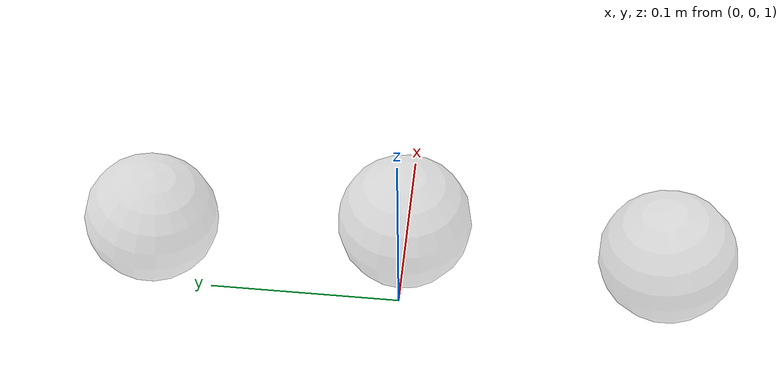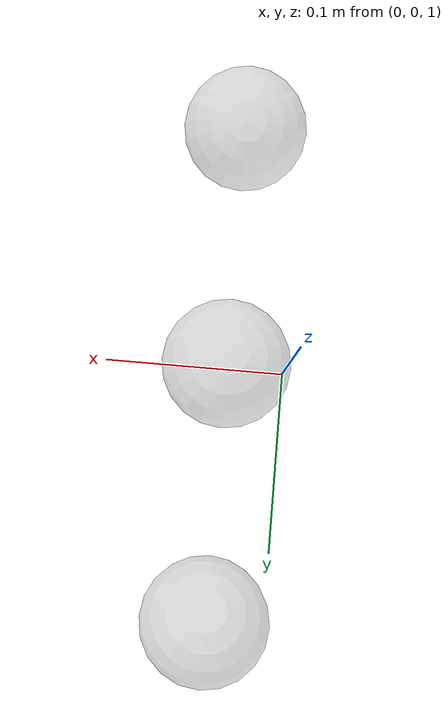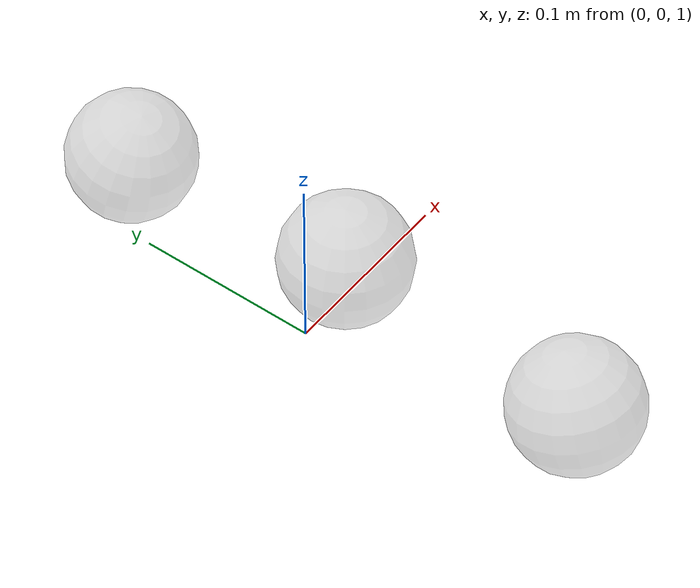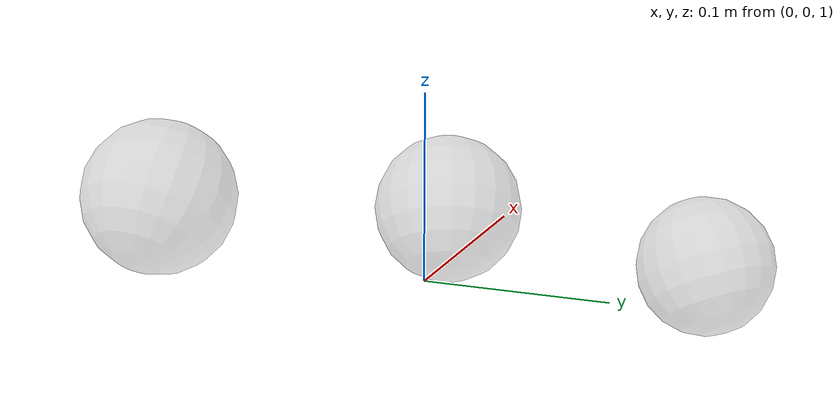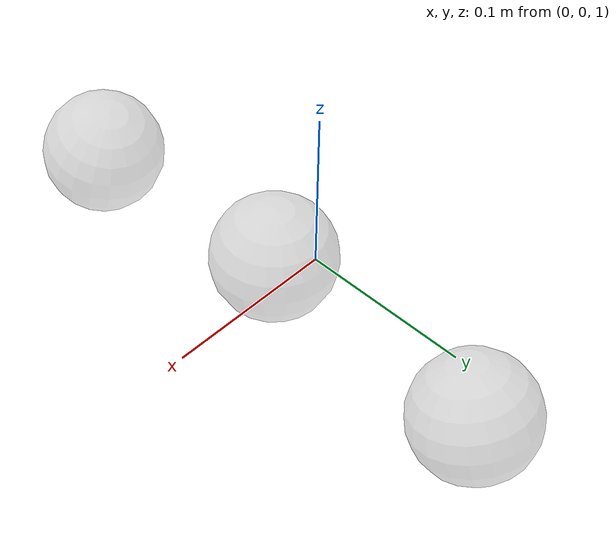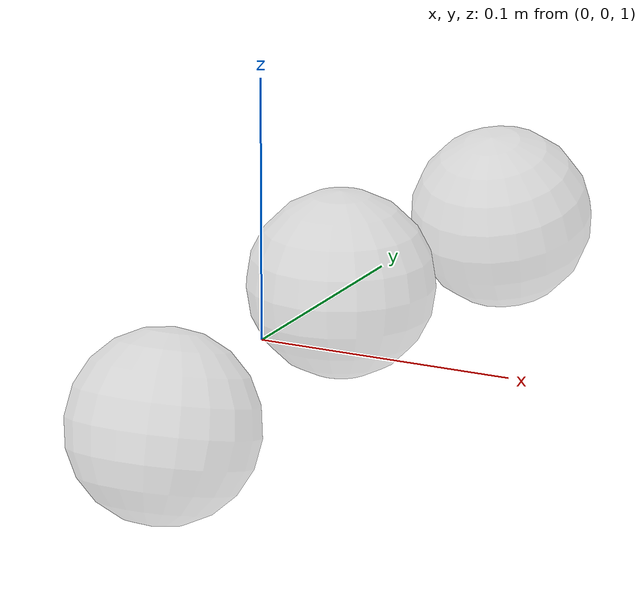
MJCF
<?xml version='1.0' encoding='utf-8'?>
<mujoco model="R1">
  <compiler angle="radian" />

  <statistic meansize="0.144785" extent="1.23314" center="0.025392 2.0634e-05 -0.245975" />
  <default>
    <joint damping="0.001" armature="0.01" frictionloss="0.1" />
  </default>
  <option timestep="0.002" />
  <worldbody>
    <body name="pelvis_link" pos="0.0 0.0 0.78">
      <inertial pos="0.0269881 0.000184581 -0.0704106" quat="0.703476 0.707138 -0.0498219 0.0509351" mass="2.25001" diaginertia="0.00646721 0.00620017 0.00381749" />
      <joint name="floating_base_joint" type="free" />
      <body name="hips_sphere" pos="0.0325 0.0 -0.0902351">
        <geom type="sphere" size="0.035" contype="0" conaffinity="0" group="1" density="0" rgba="0.6 0.6 0.6 0.0" />
      </body>
      <body name="left_hip_pitch_link" pos="0.0325 0.0704672 -0.0902351" quat="0.976296 -0.21644 0 0">
        <inertial pos="-0.003907 0.0415 -0.043716" quat="0.977607 0.186708 0.0209888 0.0947863" mass="0.935482" diaginertia="0.00105051 0.000997373 0.000565117" />
        <joint name="left_hip_pitch_joint" pos="0 0 0" axis="0 1 0" range="-2.93215 2.54818" actuatorfrcrange="-60 60" />
        <body name="left_hip_roll_link" pos="0.0248 0.045 -0.053" quat="0.976296 0.21644 0 0">
          <inertial pos="-0.008002 -0.00206 -0.032798" quat="0.917982 -0.152984 0.363871 0.0387668" mass="0.207609" diaginertia="0.000298715 0.000236156 0.000181129" />
          <joint name="left_hip_roll_joint" pos="0 0 0" axis="1 0 0" range="-1.0472 1.74533" actuatorfrcrange="-60 60" />
          <body name="left_hip_yaw_link" pos="-0.0194507 -0.0006 -0.0618">
            <inertial pos="-0.010059 -0.004848 -0.093609" quat="0.648721 0.0354742 0.0856084 0.755364" mass="1.73967" diaginertia="0.0083895 0.00828665 0.00127385" />
            <joint name="left_hip_yaw_joint" pos="0 0 0" axis="0 0 1" range="-2.7402 2.7402" actuatorfrcrange="-60 60" />
            <body name="left_knee_link" pos="-0.02315 0.01866 -0.159301">
              <inertial pos="-0.00945956 -0.0124217 -0.130949" quat="0.989411 -0.108674 0.0123777 -0.0954103" mass="2.37477" diaginertia="0.0159882 0.0147186 0.00341321" />
              <joint name="left_knee_joint" pos="0 0 0" axis="0 1 0" range="-0.174533 2.42601" actuatorfrcrange="-60 60" />
              <body name="left_ankle_pitch_link" pos="-0.0168139 -0.0205811 -0.309175">
                <inertial pos="-0.000104 0 -0.00772" quat="0.707107 0 0 0.707107" mass="0.071231" diaginertia="1.2e-05 7e-06 7e-06" />
                <joint name="left_ankle_pitch_joint" pos="0 0 0" axis="0 1 0" range="-0.87266 0.57596" actuatorfrcrange="-50 50" />
                <body name="left_ankle_roll_link">
                  <inertial pos="0.0296647 0 -0.0326975" quat="0 0.737468 0 0.675382" mass="0.481688" diaginertia="0.00126935 0.00121244 0.000230475" />
                  <joint name="left_ankle_roll_joint" pos="0 0 0" axis="1 0 0" range="-0.2618 0.2618" actuatorfrcrange="-50 50" />
                  <body name="left_foot_end_link" pos="-0.04 0 -0.04">
                    <geom type="sphere" size="0.01" contype="0" conaffinity="0" group="1" density="0" rgba="1 0 0 0" />
                  </body>
                  <body name="left_toe_link" pos="0.12 0 -0.04">
                    <geom type="sphere" size="0.01" contype="0" conaffinity="0" group="1" density="0" rgba="1 0 0 0" />
                  </body>
                </body>
              </body>
            </body>
          </body>
        </body>
      </body>
      <body name="right_hip_pitch_link" pos="0.0325 -0.0704672 -0.0902351" quat="0.976296 0.21644 0 0">
        <inertial pos="-0.003907 -0.0415 -0.043716" quat="0.977607 -0.186708 0.0209888 -0.0947863" mass="0.935482" diaginertia="0.00105051 0.000997373 0.000565117" />
        <joint name="right_hip_pitch_joint" pos="0 0 0" axis="0 1 0" range="-2.93215 2.54818" actuatorfrcrange="-60 60" />
        <body name="right_hip_roll_link" pos="0.0248 -0.045 -0.053" quat="0.976296 -0.21644 0 0">
          <inertial pos="-0.008002 0.00206 -0.032798" quat="0.917982 0.152984 0.363871 -0.0387668" mass="0.207609" diaginertia="0.000298715 0.000236156 0.000181129" />
          <joint name="right_hip_roll_joint" pos="0 0 0" axis="1 0 0" range="-1.74533 1.0472" actuatorfrcrange="-60 60" />
          <body name="right_hip_yaw_link" pos="-0.0194507 0.0006 -0.0618">
            <inertial pos="-0.010059 0.004848 -0.093609" quat="0.755364 0.0856084 0.0354742 0.648721" mass="1.73967" diaginertia="0.0083895 0.00828665 0.00127385" />
            <joint name="right_hip_yaw_joint" pos="0 0 0" axis="0 0 1" range="-2.7402 2.7402" actuatorfrcrange="-60 60" />
            <body name="right_knee_link" pos="-0.02315 -0.01866 -0.159301">
              <inertial pos="-0.00945956 0.0223594 -0.13014" quat="0.996238 -0.0295531 0.0208115 -0.0787615" mass="2.37477" diaginertia="0.0157119 0.014763 0.00313242" />
              <joint name="right_knee_joint" pos="0 0 0" axis="0 1 0" range="-0.17453 2.42601" actuatorfrcrange="-60 60" />
              <body name="right_ankle_pitch_link" pos="-0.0168139 0.0205811 -0.309175">
                <inertial pos="-0.000104 0 -0.00772" quat="0.707107 0 0 0.707107" mass="0.071231" diaginertia="1.2e-05 7e-06 7e-06" />
                <joint name="right_ankle_pitch_joint" pos="0 0 0" axis="0 1 0" range="-0.87266 0.57596" actuatorfrcrange="-50 50" />
                <body name="right_ankle_roll_link">
                  <inertial pos="0.0296647 0 -0.0326975" quat="0 0.737468 0 0.675382" mass="0.481688" diaginertia="0.00126935 0.00121244 0.000230475" />
                  <joint name="right_ankle_roll_joint" pos="0 0 0" axis="1 0 0" range="-0.261799 0.261799" actuatorfrcrange="-50 50" />
                  <body name="right_foot_end_link" pos="-0.04 0 -0.04">
                    <geom type="sphere" size="0.01" contype="0" conaffinity="0" group="1" density="0" rgba="1 0 0 0" />
                  </body>
                  <body name="right_toe_link" pos="0.12 0 -0.04">
                    <geom type="sphere" size="0.01" contype="0" conaffinity="0" group="1" density="0" rgba="1 0 0 0" />
                  </body>
                </body>
              </body>
            </body>
          </body>
        </body>
      </body>
      <body name="waist_roll_link">
        <inertial pos="0.030601 0 0.004788" quat="0.999992 0 -0.00390592 0" mass="0.920736" diaginertia="0.000806008 0.000734 0.000677992" />
        <joint name="waist_roll_joint" pos="0 0 0" axis="1 0 0" range="-0.5236 0.5236" actuatorfrcrange="-60 60" />
        <body name="waist_yaw_link" pos="0.0325 0 0.049">
          <inertial pos="-0.000648 -5.2e-05 0.144497" quat="0.999887 -0.0030653 -0.0143494 -0.00317387" mass="6.0242" diaginertia="0.0609794 0.0506456 0.024571" />
          <joint name="waist_yaw_joint" pos="0 0 0" axis="0 0 1" range="-2.618 2.618" actuatorfrcrange="-60 60" />
          <body name="left_shoulder_pitch_link" pos="0 0.085688 0.19749" quat="0.99144 0.130561 0 0">
            <inertial pos="0.00294386 0.0447687 -0.0228687" quat="0.933514 0.315801 -0.107611 0.131308" mass="0.83795" diaginertia="0.000664554 0.000644431 0.000530845" />
            <joint name="left_shoulder_pitch_joint" pos="0 0 0" axis="0 1 0" range="-3.1416 2.0944" actuatorfrcrange="-60 60" />
            <body name="left_shoulder_sphere" pos="0.0 0.047132 -0.025693">
              <geom type="sphere" size="0.035" contype="0" conaffinity="0" group="1" density="0" rgba="0.6 0.6 0.6 0.35" />
            </body>
            <body name="left_shoulder_roll_link" pos="0.03445 0.047132 -0.025693" quat="0.99144 -0.130561 0 0">
              <inertial pos="-0.037828 0.003967 -0.066496" quat="0.704928 -0.0676661 -0.0976966 0.699252" mass="0.740212" diaginertia="0.00108994 0.000995148 0.000547915" />
              <joint name="left_shoulder_roll_joint" pos="0 0 0" axis="1 0 0" range="-0.22689 2.4784" actuatorfrcrange="-60 60" />
              <body name="left_shoulder_yaw_link" pos="-0.03445 0.0043 -0.10835">
                <inertial pos="0.013143 -0.004355 -0.072948" quat="0.944453 -0.083861 -0.114993 0.29623" mass="0.738441" diaginertia="0.000862551 0.000851784 0.000435665" />
                <joint name="left_shoulder_yaw_joint" pos="0 0 0" axis="0 0 1" range="-1.9199 1.9199" actuatorfrcrange="-33 33" />
                <body name="left_elbow_link" pos="0.016191 0.026461 -0.082858">
                  <inertial pos="0.072371 -0.024612 -0.011566" quat="0.590432 0.585258 0.4407 0.338595" mass="0.759419" diaginertia="0.000969031 0.000938046 0.000470923" />
                  <joint name="left_elbow_joint" pos="0 0 0" axis="0 1 0" range="-0.97564 2.1852" actuatorfrcrange="-33 33" />
                  <body name="left_wrist_roll_link" pos="0.11218 -0.03002 -0.011702">
                    <inertial pos="0.068045 -0.001688 0.001392" quat="0.442664 0.566917 0.411512 0.559742" mass="0.324767" diaginertia="0.000717953 0.000704181 0.000156865" />
                    <joint name="left_wrist_roll_joint" pos="0 0 0" axis="1 0 0" range="-1.9199 1.9199" actuatorfrcrange="-33 33" />
                    <body name="left_hand" pos="0.07 0.0 0.0">
                      <geom type="sphere" size="0.035" contype="0" conaffinity="0" group="1" density="0" rgba="0.6 0.6 0.6 0.0" />
                    </body>
                  </body>
                </body>
              </body>
            </body>
          </body>
          <body name="right_shoulder_pitch_link" pos="0 -0.085688 0.19749" quat="0.99144 -0.130561 0 0">
            <inertial pos="0.00294386 -0.0447687 -0.0228687" quat="0.933514 -0.315801 -0.107611 -0.131308" mass="0.83795" diaginertia="0.000664554 0.000644431 0.000530845" />
            <joint name="right_shoulder_pitch_joint" pos="0 0 0" axis="0 1 0" range="-3.1416 2.0944" actuatorfrcrange="-60 60" />
            <body name="right_shoulder_sphere" pos="0.0 -0.047132 -0.025693">
              <geom type="sphere" size="0.035" contype="0" conaffinity="0" group="1" density="0" rgba="0.6 0.6 0.6 0.35" />
            </body>
            <body name="right_shoulder_roll_link" pos="0.03445 -0.047132 -0.025693" quat="0.99144 0.130561 0 0">
              <inertial pos="-0.037828 -0.003967 -0.066496" quat="0.699252 -0.0976966 -0.0676661 0.704928" mass="0.740212" diaginertia="0.00108994 0.000995148 0.000547915" />
              <joint name="right_shoulder_roll_joint" pos="0 0 0" axis="1 0 0" range="-2.47849 0.2268" actuatorfrcrange="-60 60" />
              <body name="right_shoulder_yaw_link" pos="-0.03445 -0.0043 -0.10835">
                <inertial pos="0.013143 0.004355 -0.072948" quat="0.944453 0.083861 -0.114993 -0.29623" mass="0.738441" diaginertia="0.000862551 0.000851784 0.000435665" />
                <joint name="right_shoulder_yaw_joint" pos="0 0 0" axis="0 0 1" range="-1.9199 1.9199" actuatorfrcrange="-33 33" />
                <body name="right_elbow_link" pos="0.016191 -0.026461 -0.082858">
                  <inertial pos="0.072371 0.024612 -0.011566" quat="0.338595 0.4407 0.585258 0.590432" mass="0.759419" diaginertia="0.000969031 0.000938046 0.000470923" />
                  <joint name="right_elbow_joint" pos="0 0 0" axis="0 1 0" range="-0.97564 2.1852" actuatorfrcrange="-33 33" />
                  <body name="right_wrist_roll_link" pos="0.11218 0.03002 -0.011702">
                    <inertial pos="0.068045 0.001688 0.001392" quat="0.559742 0.411512 0.566917 0.442664" mass="0.324767" diaginertia="0.000717953 0.000704181 0.000156865" />
                    <joint name="right_wrist_roll_joint" pos="0 0 0" axis="1 0 0" range="-1.9199 1.9199" actuatorfrcrange="-33 33" />
                    <body name="right_hand" pos="0.07 0.0 0.0">
                      <geom type="sphere" size="0.035" contype="0" conaffinity="0" group="1" density="0" rgba="0.6 0.6 0.6 0.0" />
                    </body>
                  </body>
                </body>
              </body>
            </body>
          </body>
          <body name="neck_sphere" pos="0 0.0 0.19749">
              <geom type="sphere" size="0.035" contype="0" conaffinity="0" group="1" density="0" rgba="0.6 0.6 0.6 0.35" />
          </body>
          <body name="head_pitch_link" pos="-0.006 0.03155 0.255">
            <inertial pos="-6.956e-05 -0.0307797 0.0805859" quat="0.999952 0.00642081 -0.00613861 -0.00401818" mass="0.503913" diaginertia="0.00096003 0.000913512 0.000453408" />
            <joint name="head_pitch_joint" pos="0 0 0" axis="0 1 0" range="-0.62832 0.62832" actuatorfrcrange="-33 33" />
            <body name="head_yaw_link" pos="0.0010126 -0.03155 0.1165">
              <inertial pos="0.0221166 -4.725e-05 0.00199411" quat="0.00116008 0.901357 0.00238347 0.433068" mass="0.714322" diaginertia="0.00205103 0.00202452 0.00144527" />
              <joint name="head_yaw_joint" pos="0 0 0" axis="0 0 1" range="-2.0071 2.0071" actuatorfrcrange="-33 33" />
              </body>
          </body>
        </body>
      </body>
    </body>
  </worldbody>

  <actuator>
    <motor name="left_hip_pitch_joint" joint="left_hip_pitch_joint" />
    <motor name="left_hip_roll_joint" joint="left_hip_roll_joint" />
    <motor name="left_hip_yaw_joint" joint="left_hip_yaw_joint" />
    <motor name="left_knee_joint" joint="left_knee_joint" />
    <motor name="left_ankle_pitch_joint" joint="left_ankle_pitch_joint" />
    <motor name="left_ankle_roll_joint" joint="left_ankle_roll_joint" />
    <motor name="right_hip_pitch_joint" joint="right_hip_pitch_joint" />
    <motor name="right_hip_roll_joint" joint="right_hip_roll_joint" />
    <motor name="right_hip_yaw_joint" joint="right_hip_yaw_joint" />
    <motor name="right_knee_joint" joint="right_knee_joint" />
    <motor name="right_ankle_pitch_joint" joint="right_ankle_pitch_joint" />
    <motor name="right_ankle_roll_joint" joint="right_ankle_roll_joint" />
    <motor name="waist_yaw_joint" joint="waist_yaw_joint" />
    <motor name="waist_roll_joint" joint="waist_roll_joint" />
    <motor name="left_shoulder_pitch_joint" joint="left_shoulder_pitch_joint" />
    <motor name="left_shoulder_roll_joint" joint="left_shoulder_roll_joint" />
    <motor name="left_shoulder_yaw_joint" joint="left_shoulder_yaw_joint" />
    <motor name="left_elbow_joint" joint="left_elbow_joint" />
    <motor name="left_wrist_roll_joint" joint="left_wrist_roll_joint" />
    <motor name="right_shoulder_pitch_joint" joint="right_shoulder_pitch_joint" />
    <motor name="right_shoulder_roll_joint" joint="right_shoulder_roll_joint" />
    <motor name="right_shoulder_yaw_joint" joint="right_shoulder_yaw_joint" />
    <motor name="right_elbow_joint" joint="right_elbow_joint" />
    <motor name="right_wrist_roll_joint" joint="right_wrist_roll_joint" />
  </actuator>

</mujoco>
